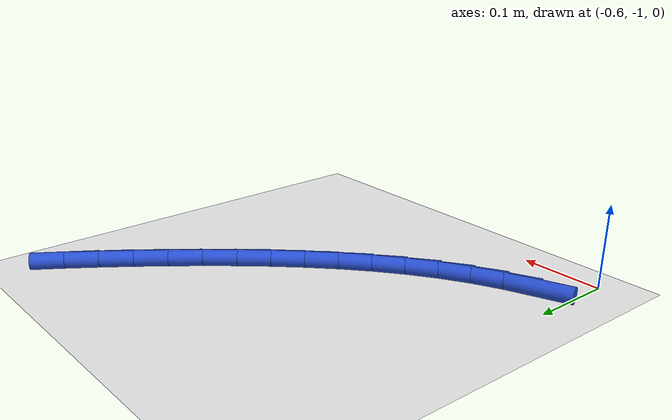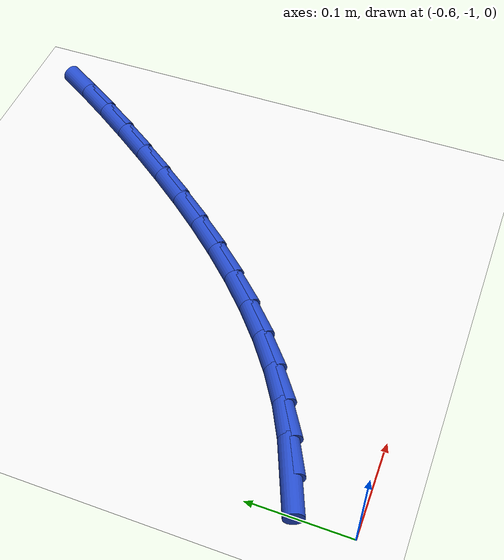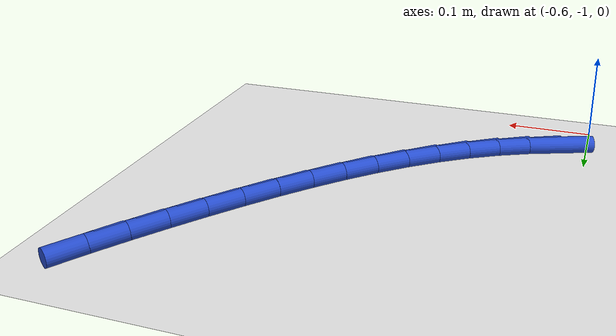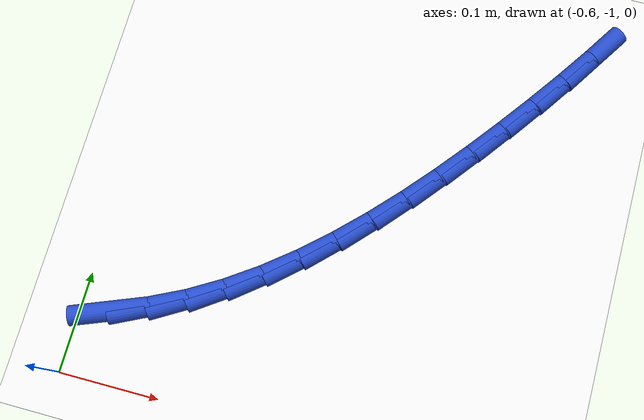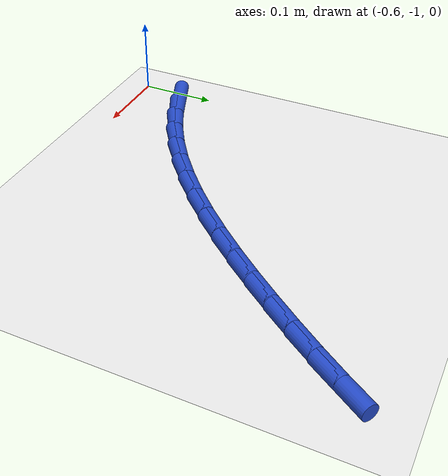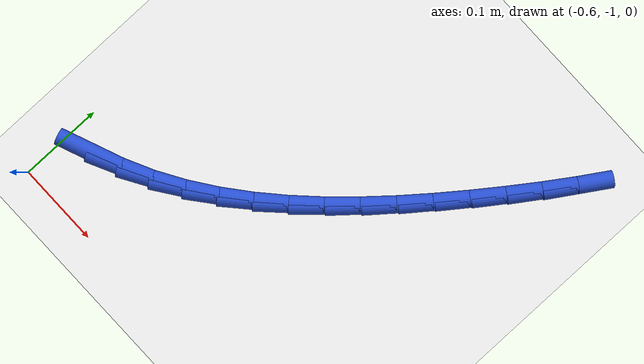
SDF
<sdf version="1.6">
 <world name="default">
  <model name="ground_plane">
   <static>1</static>
   <link name="link">
    <collision name="collision">
     <geometry><plane><normal>0 0 1</normal><size>100 100</size></plane></geometry>
     <surface><friction><ode><mu>100</mu><mu2>50</mu2></ode></friction></surface>
    </collision>
    <visual name="visual">
     <cast_shadows>0</cast_shadows>
     <geometry><plane><normal>0 0 1</normal><size>100 100</size></plane></geometry>
     <material>
      <script><uri>file://media/materials/scripts/gazebo.material</uri><name>Gazebo/WhiteGlow</name></script>
     </material>
    </visual>
   </link>
  </model>
  <model name="line">
   <link name="link_151">
    <pose>-0.5684625027332408 -0.9316723942943141 0.01 0 1.57 0.3779250428599208</pose>
    <collision name="collision">
     <geometry><cylinder><radius>0.01</radius><length>0.08</length></cylinder></geometry>
    </collision>
    <visual name="visual">
     <material>
      <script><name>Gazebo/Blue</name><uri>file://media/materials/scripts/gazebo.material</uri></script>
     </material>
     <geometry><cylinder><radius>0.01</radius><length>0.08</length></cylinder></geometry>
    </visual>
   </link>
   <link name="link_152">
    <pose>-0.5337286501150112 -0.9178827514322525 0.01 0 1.57 0.45643065952509526</pose>
    <collision name="collision">
     <geometry><cylinder><radius>0.01</radius><length>0.08</length></cylinder></geometry>
    </collision>
    <visual name="visual">
     <material>
      <script><name>Gazebo/Blue</name><uri>file://media/materials/scripts/gazebo.material</uri></script>
     </material>
     <geometry><cylinder><radius>0.01</radius><length>0.08</length></cylinder></geometry>
    </visual>
   </link>
   <link name="link_153">
    <pose>-0.500073074397994 -0.9013574904025553 0.01 0 1.57 0.5388844668888805</pose>
    <collision name="collision">
     <geometry><cylinder><radius>0.01</radius><length>0.08</length></cylinder></geometry>
    </collision>
    <visual name="visual">
     <material>
      <script><name>Gazebo/Blue</name><uri>file://media/materials/scripts/gazebo.material</uri></script>
     </material>
     <geometry><cylinder><radius>0.01</radius><length>0.08</length></cylinder></geometry>
    </visual>
   </link>
   <link name="link_154">
    <pose>-0.4675494115600424 -0.8819111281503427 0.01 0 1.57 0.6134247234360193</pose>
    <collision name="collision">
     <geometry><cylinder><radius>0.01</radius><length>0.08</length></cylinder></geometry>
    </collision>
    <visual name="visual">
     <material>
      <script><name>Gazebo/Blue</name><uri>file://media/materials/scripts/gazebo.material</uri></script>
     </material>
     <geometry><cylinder><radius>0.01</radius><length>0.08</length></cylinder></geometry>
    </visual>
   </link>
   <link name="link_155">
    <pose>-0.436126969801864 -0.8597888250774215 0.01 0 1.57 0.6788246101127408</pose>
    <collision name="collision">
     <geometry><cylinder><radius>0.01</radius><length>0.08</length></cylinder></geometry>
    </collision>
    <visual name="visual">
     <material>
      <script><name>Gazebo/Blue</name><uri>file://media/materials/scripts/gazebo.material</uri></script>
     </material>
     <geometry><cylinder><radius>0.01</radius><length>0.08</length></cylinder></geometry>
    </visual>
   </link>
   <link name="link_156">
    <pose>-0.40576362368527324 -0.8352941306709116 0.01 0 1.57 0.7356655689504028</pose>
    <collision name="collision">
     <geometry><cylinder><radius>0.01</radius><length>0.08</length></cylinder></geometry>
    </collision>
    <visual name="visual">
     <material>
      <script><name>Gazebo/Blue</name><uri>file://media/materials/scripts/gazebo.material</uri></script>
     </material>
     <geometry><cylinder><radius>0.01</radius><length>0.08</length></cylinder></geometry>
    </visual>
   </link>
   <link name="link_157">
    <pose>-0.37641724777208496 -0.8087305944179329 0.01 0 1.57 0.7846450371783065</pose>
    <collision name="collision">
     <geometry><cylinder><radius>0.01</radius><length>0.08</length></cylinder></geometry>
    </collision>
    <visual name="visual">
     <material>
      <script><name>Gazebo/Blue</name><uri>file://media/materials/scripts/gazebo.material</uri></script>
     </material>
     <geometry><cylinder><radius>0.01</radius><length>0.08</length></cylinder></geometry>
    </visual>
   </link>
   <link name="link_158">
    <pose>-0.3480457166241149 -0.7804017658056067 0.01 0 1.57 0.8264686253964704</pose>
    <collision name="collision">
     <geometry><cylinder><radius>0.01</radius><length>0.08</length></cylinder></geometry>
    </collision>
    <visual name="visual">
     <material>
      <script><name>Gazebo/Blue</name><uri>file://media/materials/scripts/gazebo.material</uri></script>
     </material>
     <geometry><cylinder><radius>0.01</radius><length>0.08</length></cylinder></geometry>
    </visual>
   </link>
   <link name="link_159">
    <pose>-0.3206069048031772 -0.7506111943210519 0.01 0 1.57 0.8617845146880581</pose>
    <collision name="collision">
     <geometry><cylinder><radius>0.01</radius><length>0.08</length></cylinder></geometry>
    </collision>
    <visual name="visual">
     <material>
      <script><name>Gazebo/Blue</name><uri>file://media/materials/scripts/gazebo.material</uri></script>
     </material>
     <geometry><cylinder><radius>0.01</radius><length>0.08</length></cylinder></geometry>
    </visual>
   </link>
   <link name="link_160">
    <pose>-0.2940586868710883 -0.7196624294513906 0.01 0 1.57 0.8911469686953852</pose>
    <collision name="collision">
     <geometry><cylinder><radius>0.01</radius><length>0.08</length></cylinder></geometry>
    </collision>
    <visual name="visual">
     <material>
      <script><name>Gazebo/Blue</name><uri>file://media/materials/scripts/gazebo.material</uri></script>
     </material>
     <geometry><cylinder><radius>0.01</radius><length>0.08</length></cylinder></geometry>
    </visual>
   </link>
   <link name="link_161">
    <pose>-0.2683589373896628 -0.6878590206837423 0.01 0 1.57 0.9149972682843908</pose>
    <collision name="collision">
     <geometry><cylinder><radius>0.01</radius><length>0.08</length></cylinder></geometry>
    </collision>
    <visual name="visual">
     <material>
      <script><name>Gazebo/Blue</name><uri>file://media/materials/scripts/gazebo.material</uri></script>
     </material>
     <geometry><cylinder><radius>0.01</radius><length>0.08</length></cylinder></geometry>
    </visual>
   </link>
   <link name="link_162">
    <pose>-0.2434655309207158 -0.655504517505227 0.01 0 1.57 0.9339642679797049</pose>
    <collision name="collision">
     <geometry><cylinder><radius>0.01</radius><length>0.08</length></cylinder></geometry>
    </collision>
    <visual name="visual">
     <material>
      <script><name>Gazebo/Blue</name><uri>file://media/materials/scripts/gazebo.material</uri></script>
     </material>
     <geometry><cylinder><radius>0.01</radius><length>0.08</length></cylinder></geometry>
    </visual>
   </link>
   <link name="link_163">
    <pose>-0.21934142329100553 -0.622888121938224 0.01 0 1.57 0.9527103005752906</pose>
    <collision name="collision">
     <geometry><cylinder><radius>0.01</radius><length>0.08</length></cylinder></geometry>
    </collision>
    <visual name="visual">
     <material>
      <script><name>Gazebo/Blue</name><uri>file://media/materials/scripts/gazebo.material</uri></script>
     </material>
     <geometry><cylinder><radius>0.01</radius><length>0.08</length></cylinder></geometry>
    </visual>
   </link>
   <link name="link_164">
    <pose>-0.19602279951611085 -0.5900922659947846 0.01 0 1.57 0.9746700681867496</pose>
    <collision name="collision">
     <geometry><cylinder><radius>0.01</radius><length>0.08</length></cylinder></geometry>
    </collision>
    <visual name="visual">
     <material>
      <script><name>Gazebo/Blue</name><uri>file://media/materials/scripts/gazebo.material</uri></script>
     </material>
     <geometry><cylinder><radius>0.01</radius><length>0.08</length></cylinder></geometry>
    </visual>
   </link>
   <link name="link_165">
    <pose>-0.1736008172200903 -0.5570441609750282 0.01 0 1.57 0.9999622887359959</pose>
    <collision name="collision">
     <geometry><cylinder><radius>0.01</radius><length>0.08</length></cylinder></geometry>
    </collision>
    <visual name="visual">
     <material>
      <script><name>Gazebo/Blue</name><uri>file://media/materials/scripts/gazebo.material</uri></script>
     </material>
     <geometry><cylinder><radius>0.01</radius><length>0.08</length></cylinder></geometry>
    </visual>
   </link>
  </model>
 </world>
</sdf>
